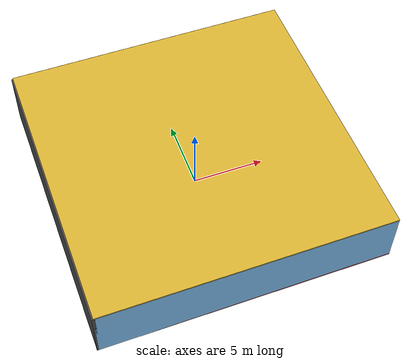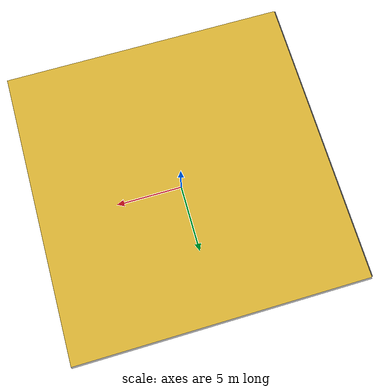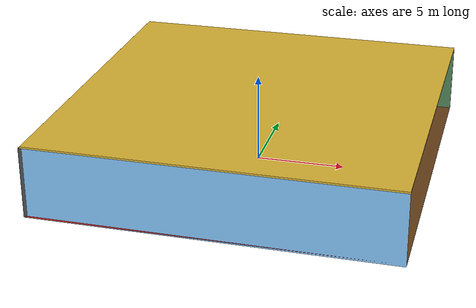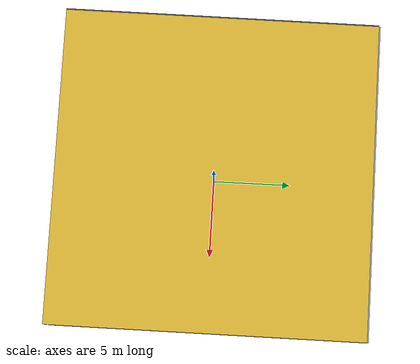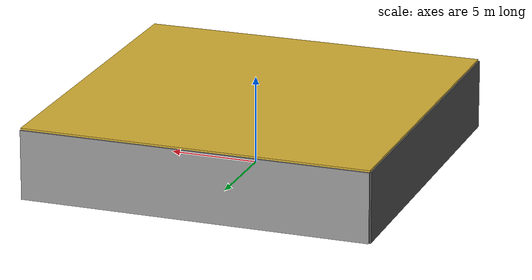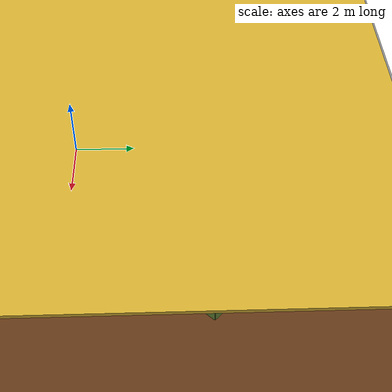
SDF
<sdf version="1.4">
 <world name="default">
  <physics type="ode">
   <max_step_size>0.001</max_step_size>
   <real_time_factor>1</real_time_factor>
   <real_time_update_rate>1000</real_time_update_rate>
   <gravity>0 0 -9.8</gravity>
  </physics>
  <scene><ambient>0.4 0.4 0.4 1</ambient><background>0.7 0.7 0.7 1</background><shadows>1</shadows></scene>
  <model name="Surrounding">
   <static>1</static>
   <link name="Ceiling">
    <collision name="Ceiling_Collision"><geometry><box><size>20 20 0.1</size></box></geometry></collision>
    <visual name="Ceiling_Visual">
     <geometry><box><size>20 20 0.1</size></box></geometry>
     <material>
      <script><uri>file://media/materials/scripts/gazebo.material</uri><name>Gazebo/Gold</name></script>
     </material>
    </visual>
    <pose>0 0 4.05 0 0 0</pose>
   </link>
   <link name="Wall_South">
    <collision name="Wall_South_Collision">
     <geometry><box><size>20 0 4</size></box></geometry>
     <pose>0 0 2 0 -0 0</pose>
    </collision>
    <visual name="Wall_South_Visual">
     <pose>0 0 2 0 -0 0</pose>
     <geometry><box><size>20 0 4</size></box></geometry>
     <material>
      <script><uri>file://media/materials/scripts/gazebo.material</uri><name>Gazebo/SkyBlue</name></script>
     </material>
    </visual>
    <velocity_decay><linear>0</linear><angular>0</angular></velocity_decay>
    <pose>0 -10 0 0 -0 0</pose>
   </link>
   <link name="Wall_East">
    <collision name="Wall_21_Collision">
     <geometry><box><size>20 0 4</size></box></geometry>
     <pose>0 0 2 0 -0 0</pose>
    </collision>
    <visual name="Wall_21_Visual">
     <pose>0 0 2 0 -0 0</pose>
     <geometry><box><size>20 0 4</size></box></geometry>
     <material>
      <script><uri>file://media/materials/scripts/gazebo.material</uri><name>Gazebo/GreenTransparent</name></script>
     </material>
    </visual>
    <velocity_decay><linear>0</linear><angular>0</angular></velocity_decay>
    <pose>10 0 0 0 -0 1.5708</pose>
   </link>
   <link name="Wall_North">
    <collision name="Wall_22_Collision">
     <geometry><box><size>20 0.2 4</size></box></geometry>
     <pose>0 0 2 0 -0 0</pose>
    </collision>
    <visual name="Wall_22_Visual">
     <pose>0 0 2 0 -0 0</pose>
     <geometry><box><size>20 0.2 4</size></box></geometry>
     <material>
      <script><uri>file://media/materials/scripts/gazebo.material</uri><name>Gazebo/GreyGradientSky</name></script>
     </material>
    </visual>
    <velocity_decay><linear>0</linear><angular>0</angular></velocity_decay>
    <pose>0 10 0 0 -0 0</pose>
   </link>
   <link name="Wall_West">
    <collision name="Wall_23_Collision">
     <geometry><box><size>20 0.2 4</size></box></geometry>
     <pose>0 0 2 0 -0 0</pose>
    </collision>
    <visual name="Wall_23_Visual">
     <pose>0 0 2 0 -0 0</pose>
     <geometry><box><size>20 0.2 4</size></box></geometry>
     <material>
      <script><uri>file://media/materials/scripts/gazebo.material</uri><name>Gazebo/DarkGrey</name></script>
     </material>
    </visual>
    <velocity_decay><linear>0</linear><angular>0</angular></velocity_decay>
    <pose>-10 0 0 0 0 -1.5708</pose>
   </link>
   <link name="Ground_link">
    <collision name="collision">
     <pose>0 0 .05 0 -0 0</pose>
     <geometry><box><size>20 20 0.1</size></box></geometry>
    </collision>
    <visual name="visual">
     <pose>0 0 .05 0 -0 0</pose>
     <geometry><box><size>20 20 0.1</size></box></geometry>
     <material>
      <script><uri>file://media/materials/scripts/gazebo.material</uri><name>Gazebo/Red</name></script>
     </material>
    </visual>
   </link>
   <static>1</static>
  </model>
  <spherical_coordinates>
   <surface_model>EARTH_WGS84</surface_model>
   <latitude_deg>0</latitude_deg>
   <longitude_deg>0</longitude_deg>
   <elevation>0</elevation>
   <heading_deg>0</heading_deg>
  </spherical_coordinates>
  <light name="lightball_0" type="diffuse">
   <diffuse>0.8 0.8 0.8 1</diffuse>
   <specular>0.2 0.2 0.2 1</specular>
   <attenuation>
    <range>100</range>
    <constant>0.7</constant>
    <linear>0.01</linear>
    <quadratic>0.001</quadratic>
   </attenuation>
   <direction>-0.5 0.1 -0.9</direction>
   <pose>-9.14293596965 -1.06853364958 0.767565386049 0 0 0</pose>
  </light>
  <light name="lightball_1" type="diffuse">
   <diffuse>0.8 0.8 0.8 1</diffuse>
   <specular>0.2 0.2 0.2 1</specular>
   <attenuation>
    <range>100</range>
    <constant>0.7</constant>
    <linear>0.01</linear>
    <quadratic>0.001</quadratic>
   </attenuation>
   <direction>-0.5 0.1 -0.9</direction>
   <pose>7.58962487072 -2.35147865335 1.84307481242 0 0 0</pose>
  </light>
  <light name="lightball_2" type="diffuse">
   <diffuse>0.8 0.8 0.8 1</diffuse>
   <specular>0.2 0.2 0.2 1</specular>
   <attenuation>
    <range>100</range>
    <constant>0.7</constant>
    <linear>0.01</linear>
    <quadratic>0.001</quadratic>
   </attenuation>
   <direction>-0.5 0.1 -0.9</direction>
   <pose>-7.55374337059 -4.69547564002 2.82970047468 0 0 0</pose>
  </light>
  <light name="lightball_3" type="diffuse">
   <diffuse>0.8 0.8 0.8 1</diffuse>
   <specular>0.2 0.2 0.2 1</specular>
   <attenuation>
    <range>100</range>
    <constant>0.7</constant>
    <linear>0.01</linear>
    <quadratic>0.001</quadratic>
   </attenuation>
   <direction>-0.5 0.1 -0.9</direction>
   <pose>4.59146221075 -6.32895540592 0.533342288463 0 0 0</pose>
  </light>
  <light name="lightball_4" type="diffuse">
   <diffuse>0.8 0.8 0.8 1</diffuse>
   <specular>0.2 0.2 0.2 1</specular>
   <attenuation>
    <range>100</range>
    <constant>0.7</constant>
    <linear>0.01</linear>
    <quadratic>0.001</quadratic>
   </attenuation>
   <direction>-0.5 0.1 -0.9</direction>
   <pose>-3.71604575606 5.69588086965 1.11651256264 0 0 0</pose>
  </light>
  <light name="lightball_5" type="diffuse">
   <diffuse>0.8 0.8 0.8 1</diffuse>
   <specular>0.2 0.2 0.2 1</specular>
   <attenuation>
    <range>100</range>
    <constant>0.7</constant>
    <linear>0.01</linear>
    <quadratic>0.001</quadratic>
   </attenuation>
   <direction>-0.5 0.1 -0.9</direction>
   <pose>7.48086165154 7.62631247454 1.8439692272 0 0 0</pose>
  </light>
  <light name="lightball_6" type="diffuse">
   <diffuse>0.8 0.8 0.8 1</diffuse>
   <specular>0.2 0.2 0.2 1</specular>
   <attenuation>
    <range>100</range>
    <constant>0.7</constant>
    <linear>0.01</linear>
    <quadratic>0.001</quadratic>
   </attenuation>
   <direction>-0.5 0.1 -0.9</direction>
   <pose>-3.70392985518 7.27839213002 0.84062645259 0 0 0</pose>
  </light>
  <include><uri>model://cabinet</uri><pose>-8.05578293641 -4.56671116234 0 0 0 1.61865128021</pose></include>
  <include><uri>model://table</uri><pose>-3.7020947138 1.62963931966 0 0 0 0.655956222547</pose></include>
  <include><uri>model://cabinet</uri><pose>0.597592106381 0.63359106097 0 0 0 1.27112331613</pose></include>
  <include>
   <uri>model://textured_shapes</uri>
   <pose>2.57775140321 4.83692666518 0 0 0 2.83149697043</pose>
  </include>
  <include>
   <uri>model://construction_cone</uri>
   <pose>3.33359107445 4.0778038288 0 0 0 1.99171031953</pose>
  </include>
  <include><uri>model://cabinet</uri><pose>7.06862276262 4.48904127189 0 0 0 0.808242704707</pose></include>
 </world>
</sdf>

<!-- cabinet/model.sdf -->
<sdf version="1.5">
  <model name="cabinet">
    <static>true</static>
    <link name="cabinet_bottom_plate">
      <inertial>
        <pose>0 0 -1 0 0 0</pose>
        <inertia>
          <ixx>2.050000</ixx>
          <ixy>0</ixy>
          <ixz>0</ixz>
          <iyy>2.050000</iyy>
          <iyz>0</iyz>
          <izz>2.050000</izz>
        </inertia>
        <mass>25.000000</mass>
      </inertial>
      <collision name="cabinet_bottom_plate_geom">
        <pose>0 0 0.010000 0 0 0</pose>
        <geometry>
          <box>
            <size>0.450000 0.450000 0.020000</size>
          </box>
        </geometry>
      </collision>
      <visual name="cabinet_bottom_plate_geom_visual">
        <pose>0 0 0.010000 0 0 0</pose>
        <geometry>
          <box>
            <size>0.450000 0.450000 0.020000</size>
          </box>
        </geometry>
        <material>
          <script>
            <uri>model://media/materials/scripts/gazebo.material</uri>
            <name>Gazebo/Wood</name>
          </script>
        </material>
      </visual>
      <collision name="cabinet_bottom_plate_geom_cabinet_back_plate">
        <pose>0.235000 0 0.510000 0 0 0</pose>
        <geometry>
          <box>
            <size>0.020000 0.450000 1.020000</size>
          </box>
        </geometry>
      </collision>
      <visual name="cabinet_bottom_plate_geom_cabinet_back_plate_visual">
        <pose>0.235000 0 0.510000 0 0 0</pose>
        <geometry>
          <box>
            <size>0.020000 0.450000 1.020000</size>
          </box>
        </geometry>
        <material>
          <script>
            <uri>model://media/materials/scripts/gazebo.material</uri>
            <name>Gazebo/Wood</name>
          </script>
        </material>
      </visual>
      <collision name="cabinet_bottom_plate_geom_cabinet_left_plate">
        <pose>0 0.235000 0.510000 0 0 0</pose>
        <geometry>
          <box>
            <size>0.450000 0.020000 1.020000</size>
          </box>
        </geometry>
      </collision>
      <visual name="cabinet_bottom_plate_geom_cabinet_left_plate_visual">
        <pose>0 0.235000 0.510000 0 0 0</pose>
        <geometry>
          <box>
            <size>0.450000 0.020000 1.020000</size>
          </box>
        </geometry>
        <material>
          <script>
            <uri>model://media/materials/scripts/gazebo.material</uri>
            <name>Gazebo/Wood</name>
          </script>
        </material>
      </visual>
      <collision name="cabinet_bottom_plate_geom_cabinet_middle_plate">
        <pose>0 0 0.510000 0 0 0</pose>
        <geometry>
          <box>
            <size>0.450000 0.450000 0.020000</size>
          </box>
        </geometry>
      </collision>
      <visual name="cabinet_bottom_plate_geom_cabinet_middle_plate_visual">
        <pose>0 0 0.510000 0 0 0</pose>
        <geometry>
          <box>
            <size>0.450000 0.450000 0.020000</size>
          </box>
        </geometry>
        <material>
          <script>
            <uri>model://media/materials/scripts/gazebo.material</uri>
            <name>Gazebo/Wood</name>
          </script>
        </material>
      </visual>
      <collision name="cabinet_bottom_plate_geom_cabinet_right_plate">
        <pose>0 -0.235000 0.510000 0 0 0</pose>
        <geometry>
          <box>
            <size>0.450000 0.020000 1.020000</size>
          </box>
        </geometry>
      </collision>
      <visual name="cabinet_bottom_plate_geom_cabinet_right_plate_visual">
        <pose>0 -0.235000 0.510000 0 0 0</pose>
        <geometry>
          <box>
            <size>0.450000 0.020000 1.020000</size>
          </box>
        </geometry>
        <material>
          <script>
            <uri>model://media/materials/scripts/gazebo.material</uri>
            <name>Gazebo/Wood</name>
          </script>
        </material>
      </visual>
      <collision name="cabinet_bottom_plate_geom_cabinet_top_plate">
        <pose>0 0 1.010000 0 0 0</pose>
        <geometry>
          <box>
            <size>0.450000 0.450000 0.020000</size>
          </box>
        </geometry>
      </collision>
      <visual name="cabinet_bottom_plate_geom_cabinet_top_plate_visual">
        <pose>0 0 1.010000 0 0 0</pose>
        <geometry>
          <box>
            <size>0.450000 0.450000 0.020000</size>
          </box>
        </geometry>
        <material>
          <script>
            <uri>model://media/materials/scripts/gazebo.material</uri>
            <name>Gazebo/Wood</name>
          </script>
        </material>
      </visual>
    </link>
  </model>
</sdf>

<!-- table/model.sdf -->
<sdf version="1.5">
  <model name="table">
    <static>true</static>
    <link name="link">
      <collision name="surface">
        <pose>0 0 1.0 0 0 0</pose>
        <geometry>
          <box>
            <size>1.5 0.8 0.03</size>
          </box>
        </geometry>
        <surface>
          <friction>
            <ode>
              <mu>0.6</mu>
              <mu2>0.6</mu2>
            </ode>
          </friction>
        </surface>
      </collision>
      <visual name="visual1">
        <pose>0 0 1.0 0 0 0</pose>
        <geometry>
          <box>
            <size>1.5 0.8 0.03</size>
          </box>
        </geometry>
        <material>
          <script>
            <uri>model://media/materials/scripts/gazebo.material</uri>
            <name>Gazebo/Wood</name>
          </script>
        </material>
      </visual>
      <collision name="front_left_leg">
        <pose>0.68 0.38 0.5 0 0 0</pose>
        <geometry>
          <cylinder>
            <radius>0.02</radius>
            <length>1.0</length>
          </cylinder>
        </geometry>
      </collision>
      <visual name="front_left_leg">
        <pose>0.68 0.38 0.5 0 0 0</pose>
        <geometry>
          <cylinder>
            <radius>0.02</radius>
            <length>1.0</length>
          </cylinder>
        </geometry>
        <material>
          <script>
            <uri>model://media/materials/scripts/gazebo.material</uri>
            <name>Gazebo/Grey</name>
          </script>
        </material>
      </visual>
      <collision name="front_right_leg">
        <pose>0.68 -0.38 0.5 0 0 0</pose>
        <geometry>
          <cylinder>
            <radius>0.02</radius>
            <length>1.0</length>
          </cylinder>
        </geometry>
      </collision>
      <visual name="front_right_leg">
        <pose>0.68 -0.38 0.5 0 0 0</pose>
        <geometry>
          <cylinder>
            <radius>0.02</radius>
            <length>1.0</length>
          </cylinder>
        </geometry>
        <material>
          <script>
            <uri>model://media/materials/scripts/gazebo.material</uri>
            <name>Gazebo/Grey</name>
          </script>
        </material>
      </visual>
      <collision name="back_right_leg">
        <pose>-0.68 -0.38 0.5 0 0 0</pose>
        <geometry>
          <cylinder>
            <radius>0.02</radius>
            <length>1.0</length>
          </cylinder>
        </geometry>
      </collision>
      <visual name="back_right_leg">
        <pose>-0.68 -0.38 0.5 0 0 0</pose>
        <geometry>
          <cylinder>
            <radius>0.02</radius>
            <length>1.0</length>
          </cylinder>
        </geometry>
        <material>
          <script>
            <uri>model://media/materials/scripts/gazebo.material</uri>
            <name>Gazebo/Grey</name>
          </script>
        </material>
      </visual>
      <collision name="back_left_leg">
        <pose>-0.68 0.38 0.5 0 0 0</pose>
        <geometry>
          <cylinder>
            <radius>0.02</radius>
            <length>1.0</length>
          </cylinder>
        </geometry>
      </collision>
      <visual name="back_left_leg">
        <pose>-0.68 0.38 0.5 0 0 0</pose>
        <geometry>
          <cylinder>
            <radius>0.02</radius>
            <length>1.0</length>
          </cylinder>
        </geometry>
        <material>
          <script>
            <uri>model://media/materials/scripts/gazebo.material</uri>
            <name>Gazebo/Grey</name>
          </script>
        </material>
      </visual>
    </link>
  </model>
</sdf>

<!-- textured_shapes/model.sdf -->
<sdf version="1.6">
  <model name="textured_shapes">
    <pose>0 0 0.5 0 0 0</pose>
    <link name="box">
      <pose>0 -1.5 0 0 0 0</pose>
      <collision name="collision">
        <geometry>
          <box>
            <size>1 1 1</size>
          </box>
        </geometry>
      </collision>
      <visual name="visual">
        <geometry>
          <box>
            <size>1 1 1</size>
          </box>
        </geometry>
        <material>
          <script>
            <uri>model://../model_source/models/textured_shapes/materials/scripts</uri>
            <uri>model://../model_source/models/textured_shapes/materials/textures</uri>
            <name>TexturedShape/Squares</name>
          </script>
        </material>
      </visual>
    </link>
    <link name="sphere">
      <collision name="collision">
        <geometry>
          <sphere>
            <radius>0.5</radius>
          </sphere>
        </geometry>
      </collision>
      <visual name="visual">
        <geometry>
          <sphere>
            <radius>0.5</radius>
          </sphere>
        </geometry>
        <material>
          <script>
            <uri>model://../model_source/models/textured_shapes/materials/scripts</uri>
            <uri>model://../model_source/models/textured_shapes/materials/textures</uri>
            <name>TexturedShape/Squares</name>
          </script>
        </material>
      </visual>
    </link>
    <link name="cylinder">
      <pose>0 1.5 0 0 0 0</pose>
      <collision name="collision">
        <geometry>
          <cylinder>
            <radius>0.5</radius>
            <length>1</length>
          </cylinder>
        </geometry>
      </collision>
      <visual name="visual">
        <geometry>
          <cylinder>
            <radius>0.5</radius>
            <length>1</length>
          </cylinder>
        </geometry>
        <material>
          <script>
            <uri>model://../model_source/models/textured_shapes/materials/scripts</uri>
            <uri>model://../model_source/models/textured_shapes/materials/textures</uri>
            <name>TexturedShape/Squares</name>
          </script>
        </material>
      </visual>
    </link>
  </model>
</sdf>

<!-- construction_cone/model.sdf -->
<sdf version="1.5">
  <model name="Construction Cone">
    <link name="link">
      <collision name="collision">
        <geometry>
          <mesh>
            <scale>10 10 10</scale>
            <uri>file://isr-testbed/construction_cone/meshes/construction_cone.dae</uri>
          </mesh>
        </geometry>
      </collision>
      <visual name="visual">
        <geometry>
          <mesh>
            <scale>10 10 10</scale>
            <uri>file://isr-testbed/construction_cone/meshes/construction_cone.dae</uri>
          </mesh>
        </geometry>
      </visual>
    </link>
  </model>
</sdf>
